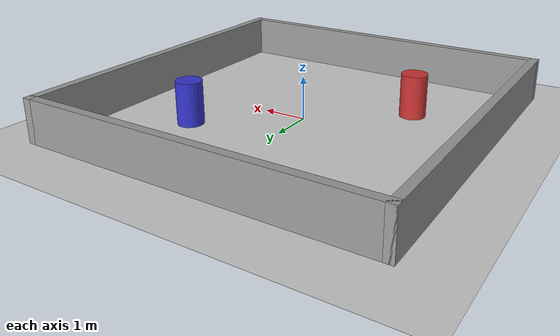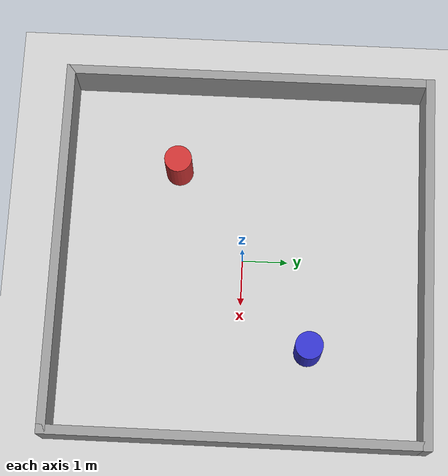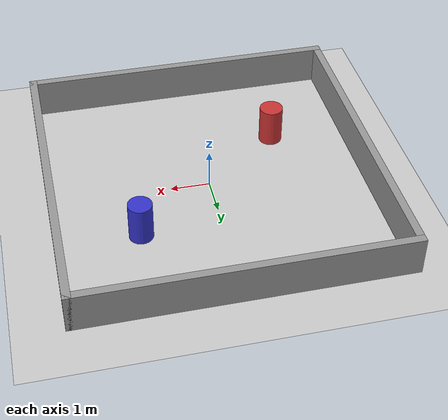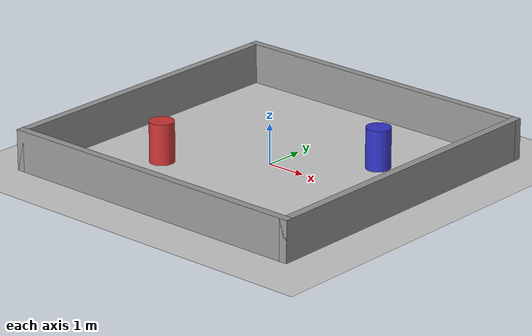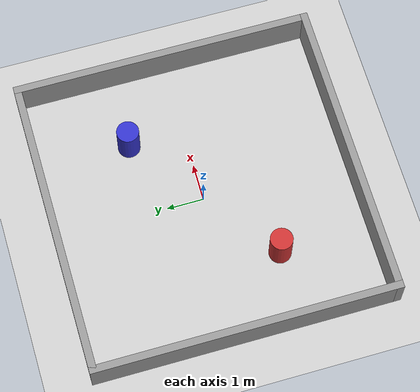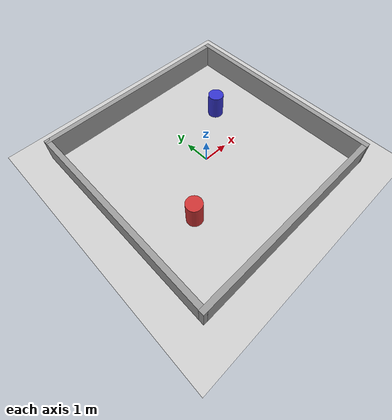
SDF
<?xml version="1.0" ?>
<sdf version="1.6">
  <world name="simple_world">

    <include><uri>model://sun</uri></include>
    <include><uri>model://ground_plane</uri></include>

    <!-- Boundary Walls (8x8m square) -->
    <model name="wall_north">
      <static>true</static>
      <pose>0 4 0.5 0 0 0</pose>
      <link name="link">
        <collision name="collision"><geometry><box><size>8.2 0.2 1</size></box></geometry></collision>
        <visual name="visual">
          <geometry><box><size>8.2 0.2 1</size></box></geometry>
          <material><ambient>0.6 0.6 0.6 1</ambient></material>
        </visual>
      </link>
    </model>

    <model name="wall_south">
      <static>true</static>
      <pose>0 -4 0.5 0 0 0</pose>
      <link name="link">
        <collision name="collision"><geometry><box><size>8.2 0.2 1</size></box></geometry></collision>
        <visual name="visual">
          <geometry><box><size>8.2 0.2 1</size></box></geometry>
          <material><ambient>0.6 0.6 0.6 1</ambient></material>
        </visual>
      </link>
    </model>

    <model name="wall_east">
      <static>true</static>
      <pose>4 0 0.5 0 0 1.5708</pose>
      <link name="link">
        <collision name="collision"><geometry><box><size>8.2 0.2 1</size></box></geometry></collision>
        <visual name="visual">
          <geometry><box><size>8.2 0.2 1</size></box></geometry>
          <material><ambient>0.6 0.6 0.6 1</ambient></material>
        </visual>
      </link>
    </model>

    <model name="wall_west">
      <static>true</static>
      <pose>-4 0 0.5 0 0 1.5708</pose>
      <link name="link">
        <collision name="collision"><geometry><box><size>8.2 0.2 1</size></box></geometry></collision>
        <visual name="visual">
          <geometry><box><size>8.2 0.2 1</size></box></geometry>
          <material><ambient>0.6 0.6 0.6 1</ambient></material>
        </visual>
      </link>
    </model>

    <!-- Cylinder 1 (blue) -->
    <model name="cylinder_1">
      <static>true</static>
      <pose>2 1.5 0.5 0 0 0</pose>
      <link name="link">
        <collision name="collision">
          <geometry><cylinder><radius>0.3</radius><length>1</length></cylinder></geometry>
        </collision>
        <visual name="visual">
          <geometry><cylinder><radius>0.3</radius><length>1</length></cylinder></geometry>
          <material><ambient>0.2 0.2 0.8 1</ambient></material>
        </visual>
      </link>
    </model>

    <!-- Cylinder 2 (red) -->
    <model name="cylinder_2">
      <static>true</static>
      <pose>-2 -1.5 0.5 0 0 0</pose>
      <link name="link">
        <collision name="collision">
          <geometry><cylinder><radius>0.3</radius><length>1</length></cylinder></geometry>
        </collision>
        <visual name="visual">
          <geometry><cylinder><radius>0.3</radius><length>1</length></cylinder></geometry>
          <material><ambient>0.8 0.2 0.2 1</ambient></material>
        </visual>
      </link>
    </model>

    <physics type="ode">
      <real_time_update_rate>1000.0</real_time_update_rate>
      <max_step_size>0.001</max_step_size>
      <real_time_factor>1</real_time_factor>
    </physics>

  </world>
</sdf>
